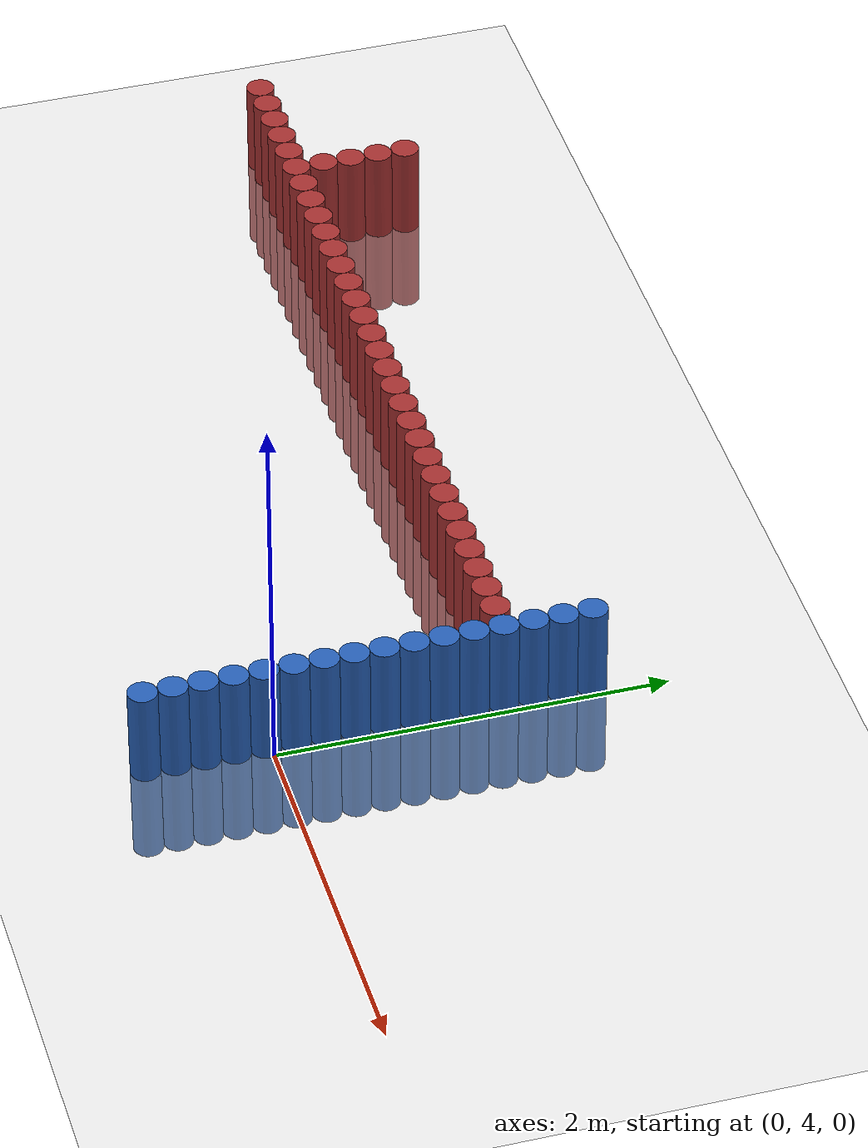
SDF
<sdf version="1.6">
 <world name="default">
  <model name="ground_plane">
   <static>1</static>
   <link name="link">
    <collision name="collision">
     <geometry><plane><normal>0 0 1</normal><size>100 100</size></plane></geometry>
     <surface><friction><ode><mu>100</mu><mu2>50</mu2></ode></friction></surface>
    </collision>
    <visual name="visual">
     <cast_shadows>0</cast_shadows>
     <geometry><plane><normal>0 0 1</normal><size>100 100</size></plane></geometry>
     <material>
      <script><uri>file://media/materials/scripts/gazebo.material</uri><name>Gazebo/Grey</name></script>
     </material>
    </visual>
   </link>
  </model>
  <model name="unit_cylinder_101">
   <static>1</static>
   <pose>-0.075000 3.375000 0.000000 0.000000 0.000000 0.000000</pose>
   <link name="link">
    <inertial>
     <mass>1</mass>
     <inertia><ixx>0.145833</ixx><ixy>0</ixy><ixz>0</ixz><iyy>0.145833</iyy><iyz>0</iyz><izz>0.125</izz></inertia>
    </inertial>
    <collision name="collision">
     <geometry><cylinder><radius>0.075000</radius><length>1</length></cylinder></geometry>
    </collision>
    <visual name="visual">
     <geometry><cylinder><radius>0.075000</radius><length>1</length></cylinder></geometry>
     <material>
      <ambient>0.152000 0.379000 0.720000 1</ambient>
      <diffuse>0.152000 0.379000 0.720000 1</diffuse>
     </material>
     <material>
      <script><name>Gazebo/Grey</name><uri>file://media/materials/scripts/gazebo.material</uri></script>
     </material>
    </visual>
   </link>
  </model>
  <model name="unit_cylinder_103">
   <static>1</static>
   <pose>-0.075000 3.525000 0.000000 0.000000 0.000000 0.000000</pose>
   <link name="link">
    <inertial>
     <mass>1</mass>
     <inertia><ixx>0.145833</ixx><ixy>0</ixy><ixz>0</ixz><iyy>0.145833</iyy><iyz>0</iyz><izz>0.125</izz></inertia>
    </inertial>
    <collision name="collision">
     <geometry><cylinder><radius>0.075000</radius><length>1</length></cylinder></geometry>
    </collision>
    <visual name="visual">
     <geometry><cylinder><radius>0.075000</radius><length>1</length></cylinder></geometry>
     <material>
      <ambient>0.152000 0.379000 0.720000 1</ambient>
      <diffuse>0.152000 0.379000 0.720000 1</diffuse>
     </material>
     <material>
      <script><name>Gazebo/Grey</name><uri>file://media/materials/scripts/gazebo.material</uri></script>
     </material>
    </visual>
   </link>
  </model>
  <model name="unit_cylinder_105">
   <static>1</static>
   <pose>-0.075000 3.675000 0.000000 0.000000 0.000000 0.000000</pose>
   <link name="link">
    <inertial>
     <mass>1</mass>
     <inertia><ixx>0.145833</ixx><ixy>0</ixy><ixz>0</ixz><iyy>0.145833</iyy><iyz>0</iyz><izz>0.125</izz></inertia>
    </inertial>
    <collision name="collision">
     <geometry><cylinder><radius>0.075000</radius><length>1</length></cylinder></geometry>
    </collision>
    <visual name="visual">
     <geometry><cylinder><radius>0.075000</radius><length>1</length></cylinder></geometry>
     <material>
      <ambient>0.152000 0.379000 0.720000 1</ambient>
      <diffuse>0.152000 0.379000 0.720000 1</diffuse>
     </material>
     <material>
      <script><name>Gazebo/Grey</name><uri>file://media/materials/scripts/gazebo.material</uri></script>
     </material>
    </visual>
   </link>
  </model>
  <model name="unit_cylinder_107">
   <static>1</static>
   <pose>-0.075000 3.825000 0.000000 0.000000 0.000000 0.000000</pose>
   <link name="link">
    <inertial>
     <mass>1</mass>
     <inertia><ixx>0.145833</ixx><ixy>0</ixy><ixz>0</ixz><iyy>0.145833</iyy><iyz>0</iyz><izz>0.125</izz></inertia>
    </inertial>
    <collision name="collision">
     <geometry><cylinder><radius>0.075000</radius><length>1</length></cylinder></geometry>
    </collision>
    <visual name="visual">
     <geometry><cylinder><radius>0.075000</radius><length>1</length></cylinder></geometry>
     <material>
      <ambient>0.152000 0.379000 0.720000 1</ambient>
      <diffuse>0.152000 0.379000 0.720000 1</diffuse>
     </material>
     <material>
      <script><name>Gazebo/Grey</name><uri>file://media/materials/scripts/gazebo.material</uri></script>
     </material>
    </visual>
   </link>
  </model>
  <model name="unit_cylinder_109">
   <static>1</static>
   <pose>-0.075000 3.975000 0.000000 0.000000 0.000000 0.000000</pose>
   <link name="link">
    <inertial>
     <mass>1</mass>
     <inertia><ixx>0.145833</ixx><ixy>0</ixy><ixz>0</ixz><iyy>0.145833</iyy><iyz>0</iyz><izz>0.125</izz></inertia>
    </inertial>
    <collision name="collision">
     <geometry><cylinder><radius>0.075000</radius><length>1</length></cylinder></geometry>
    </collision>
    <visual name="visual">
     <geometry><cylinder><radius>0.075000</radius><length>1</length></cylinder></geometry>
     <material>
      <ambient>0.152000 0.379000 0.720000 1</ambient>
      <diffuse>0.152000 0.379000 0.720000 1</diffuse>
     </material>
     <material>
      <script><name>Gazebo/Grey</name><uri>file://media/materials/scripts/gazebo.material</uri></script>
     </material>
    </visual>
   </link>
  </model>
  <model name="unit_cylinder_111">
   <static>1</static>
   <pose>-0.075000 4.125000 0.000000 0.000000 0.000000 0.000000</pose>
   <link name="link">
    <inertial>
     <mass>1</mass>
     <inertia><ixx>0.145833</ixx><ixy>0</ixy><ixz>0</ixz><iyy>0.145833</iyy><iyz>0</iyz><izz>0.125</izz></inertia>
    </inertial>
    <collision name="collision">
     <geometry><cylinder><radius>0.075000</radius><length>1</length></cylinder></geometry>
    </collision>
    <visual name="visual">
     <geometry><cylinder><radius>0.075000</radius><length>1</length></cylinder></geometry>
     <material>
      <ambient>0.152000 0.379000 0.720000 1</ambient>
      <diffuse>0.152000 0.379000 0.720000 1</diffuse>
     </material>
     <material>
      <script><name>Gazebo/Grey</name><uri>file://media/materials/scripts/gazebo.material</uri></script>
     </material>
    </visual>
   </link>
  </model>
  <model name="unit_cylinder_113">
   <static>1</static>
   <pose>-0.075000 4.275000 0.000000 0.000000 0.000000 0.000000</pose>
   <link name="link">
    <inertial>
     <mass>1</mass>
     <inertia><ixx>0.145833</ixx><ixy>0</ixy><ixz>0</ixz><iyy>0.145833</iyy><iyz>0</iyz><izz>0.125</izz></inertia>
    </inertial>
    <collision name="collision">
     <geometry><cylinder><radius>0.075000</radius><length>1</length></cylinder></geometry>
    </collision>
    <visual name="visual">
     <geometry><cylinder><radius>0.075000</radius><length>1</length></cylinder></geometry>
     <material>
      <ambient>0.152000 0.379000 0.720000 1</ambient>
      <diffuse>0.152000 0.379000 0.720000 1</diffuse>
     </material>
     <material>
      <script><name>Gazebo/Grey</name><uri>file://media/materials/scripts/gazebo.material</uri></script>
     </material>
    </visual>
   </link>
  </model>
  <model name="unit_cylinder_115">
   <static>1</static>
   <pose>-0.075000 4.425000 0.000000 0.000000 0.000000 0.000000</pose>
   <link name="link">
    <inertial>
     <mass>1</mass>
     <inertia><ixx>0.145833</ixx><ixy>0</ixy><ixz>0</ixz><iyy>0.145833</iyy><iyz>0</iyz><izz>0.125</izz></inertia>
    </inertial>
    <collision name="collision">
     <geometry><cylinder><radius>0.075000</radius><length>1</length></cylinder></geometry>
    </collision>
    <visual name="visual">
     <geometry><cylinder><radius>0.075000</radius><length>1</length></cylinder></geometry>
     <material>
      <ambient>0.152000 0.379000 0.720000 1</ambient>
      <diffuse>0.152000 0.379000 0.720000 1</diffuse>
     </material>
     <material>
      <script><name>Gazebo/Grey</name><uri>file://media/materials/scripts/gazebo.material</uri></script>
     </material>
    </visual>
   </link>
  </model>
  <model name="unit_cylinder_117">
   <static>1</static>
   <pose>-0.075000 4.575000 0.000000 0.000000 0.000000 0.000000</pose>
   <link name="link">
    <inertial>
     <mass>1</mass>
     <inertia><ixx>0.145833</ixx><ixy>0</ixy><ixz>0</ixz><iyy>0.145833</iyy><iyz>0</iyz><izz>0.125</izz></inertia>
    </inertial>
    <collision name="collision">
     <geometry><cylinder><radius>0.075000</radius><length>1</length></cylinder></geometry>
    </collision>
    <visual name="visual">
     <geometry><cylinder><radius>0.075000</radius><length>1</length></cylinder></geometry>
     <material>
      <ambient>0.152000 0.379000 0.720000 1</ambient>
      <diffuse>0.152000 0.379000 0.720000 1</diffuse>
     </material>
     <material>
      <script><name>Gazebo/Grey</name><uri>file://media/materials/scripts/gazebo.material</uri></script>
     </material>
    </visual>
   </link>
  </model>
  <model name="unit_cylinder_119">
   <static>1</static>
   <pose>-0.075000 4.725000 0.000000 0.000000 0.000000 0.000000</pose>
   <link name="link">
    <inertial>
     <mass>1</mass>
     <inertia><ixx>0.145833</ixx><ixy>0</ixy><ixz>0</ixz><iyy>0.145833</iyy><iyz>0</iyz><izz>0.125</izz></inertia>
    </inertial>
    <collision name="collision">
     <geometry><cylinder><radius>0.075000</radius><length>1</length></cylinder></geometry>
    </collision>
    <visual name="visual">
     <geometry><cylinder><radius>0.075000</radius><length>1</length></cylinder></geometry>
     <material>
      <ambient>0.152000 0.379000 0.720000 1</ambient>
      <diffuse>0.152000 0.379000 0.720000 1</diffuse>
     </material>
     <material>
      <script><name>Gazebo/Grey</name><uri>file://media/materials/scripts/gazebo.material</uri></script>
     </material>
    </visual>
   </link>
  </model>
  <model name="unit_cylinder_121">
   <static>1</static>
   <pose>-0.075000 4.875000 0.000000 0.000000 0.000000 0.000000</pose>
   <link name="link">
    <inertial>
     <mass>1</mass>
     <inertia><ixx>0.145833</ixx><ixy>0</ixy><ixz>0</ixz><iyy>0.145833</iyy><iyz>0</iyz><izz>0.125</izz></inertia>
    </inertial>
    <collision name="collision">
     <geometry><cylinder><radius>0.075000</radius><length>1</length></cylinder></geometry>
    </collision>
    <visual name="visual">
     <geometry><cylinder><radius>0.075000</radius><length>1</length></cylinder></geometry>
     <material>
      <ambient>0.152000 0.379000 0.720000 1</ambient>
      <diffuse>0.152000 0.379000 0.720000 1</diffuse>
     </material>
     <material>
      <script><name>Gazebo/Grey</name><uri>file://media/materials/scripts/gazebo.material</uri></script>
     </material>
    </visual>
   </link>
  </model>
  <model name="unit_cylinder_123">
   <static>1</static>
   <pose>-0.075000 5.025000 0.000000 0.000000 0.000000 0.000000</pose>
   <link name="link">
    <inertial>
     <mass>1</mass>
     <inertia><ixx>0.145833</ixx><ixy>0</ixy><ixz>0</ixz><iyy>0.145833</iyy><iyz>0</iyz><izz>0.125</izz></inertia>
    </inertial>
    <collision name="collision">
     <geometry><cylinder><radius>0.075000</radius><length>1</length></cylinder></geometry>
    </collision>
    <visual name="visual">
     <geometry><cylinder><radius>0.075000</radius><length>1</length></cylinder></geometry>
     <material>
      <ambient>0.152000 0.379000 0.720000 1</ambient>
      <diffuse>0.152000 0.379000 0.720000 1</diffuse>
     </material>
     <material>
      <script><name>Gazebo/Grey</name><uri>file://media/materials/scripts/gazebo.material</uri></script>
     </material>
    </visual>
   </link>
  </model>
  <model name="unit_cylinder_281">
   <static>1</static>
   <pose>-4.725000 5.175000 0.000000 0.000000 0.000000 0.000000</pose>
   <link name="link">
    <inertial>
     <mass>1</mass>
     <inertia><ixx>0.145833</ixx><ixy>0</ixy><ixz>0</ixz><iyy>0.145833</iyy><iyz>0</iyz><izz>0.125</izz></inertia>
    </inertial>
    <collision name="collision">
     <geometry><cylinder><radius>0.075000</radius><length>1</length></cylinder></geometry>
    </collision>
    <visual name="visual">
     <geometry><cylinder><radius>0.075000</radius><length>1</length></cylinder></geometry>
     <material>
      <ambient>0.648000 0.192000 0.192000 1</ambient>
      <diffuse>0.648000 0.192000 0.192000 1</diffuse>
     </material>
     <material>
      <script><name>Gazebo/Grey</name><uri>file://media/materials/scripts/gazebo.material</uri></script>
     </material>
    </visual>
   </link>
  </model>
  <model name="unit_cylinder_282">
   <static>1</static>
   <pose>-4.575000 5.175000 0.000000 0.000000 0.000000 0.000000</pose>
   <link name="link">
    <inertial>
     <mass>1</mass>
     <inertia><ixx>0.145833</ixx><ixy>0</ixy><ixz>0</ixz><iyy>0.145833</iyy><iyz>0</iyz><izz>0.125</izz></inertia>
    </inertial>
    <collision name="collision">
     <geometry><cylinder><radius>0.075000</radius><length>1</length></cylinder></geometry>
    </collision>
    <visual name="visual">
     <geometry><cylinder><radius>0.075000</radius><length>1</length></cylinder></geometry>
     <material>
      <ambient>0.648000 0.192000 0.192000 1</ambient>
      <diffuse>0.648000 0.192000 0.192000 1</diffuse>
     </material>
     <material>
      <script><name>Gazebo/Grey</name><uri>file://media/materials/scripts/gazebo.material</uri></script>
     </material>
    </visual>
   </link>
  </model>
  <model name="unit_cylinder_283">
   <static>1</static>
   <pose>-4.425000 5.175000 0.000000 0.000000 0.000000 0.000000</pose>
   <link name="link">
    <inertial>
     <mass>1</mass>
     <inertia><ixx>0.145833</ixx><ixy>0</ixy><ixz>0</ixz><iyy>0.145833</iyy><iyz>0</iyz><izz>0.125</izz></inertia>
    </inertial>
    <collision name="collision">
     <geometry><cylinder><radius>0.075000</radius><length>1</length></cylinder></geometry>
    </collision>
    <visual name="visual">
     <geometry><cylinder><radius>0.075000</radius><length>1</length></cylinder></geometry>
     <material>
      <ambient>0.648000 0.192000 0.192000 1</ambient>
      <diffuse>0.648000 0.192000 0.192000 1</diffuse>
     </material>
     <material>
      <script><name>Gazebo/Grey</name><uri>file://media/materials/scripts/gazebo.material</uri></script>
     </material>
    </visual>
   </link>
  </model>
  <model name="unit_cylinder_286">
   <static>1</static>
   <pose>-4.275000 5.175000 0.000000 0.000000 0.000000 0.000000</pose>
   <link name="link">
    <inertial>
     <mass>1</mass>
     <inertia><ixx>0.145833</ixx><ixy>0</ixy><ixz>0</ixz><iyy>0.145833</iyy><iyz>0</iyz><izz>0.125</izz></inertia>
    </inertial>
    <collision name="collision">
     <geometry><cylinder><radius>0.075000</radius><length>1</length></cylinder></geometry>
    </collision>
    <visual name="visual">
     <geometry><cylinder><radius>0.075000</radius><length>1</length></cylinder></geometry>
     <material>
      <ambient>0.648000 0.192000 0.192000 1</ambient>
      <diffuse>0.648000 0.192000 0.192000 1</diffuse>
     </material>
     <material>
      <script><name>Gazebo/Grey</name><uri>file://media/materials/scripts/gazebo.material</uri></script>
     </material>
    </visual>
   </link>
  </model>
  <model name="unit_cylinder_291">
   <static>1</static>
   <pose>-4.125000 5.175000 0.000000 0.000000 0.000000 0.000000</pose>
   <link name="link">
    <inertial>
     <mass>1</mass>
     <inertia><ixx>0.145833</ixx><ixy>0</ixy><ixz>0</ixz><iyy>0.145833</iyy><iyz>0</iyz><izz>0.125</izz></inertia>
    </inertial>
    <collision name="collision">
     <geometry><cylinder><radius>0.075000</radius><length>1</length></cylinder></geometry>
    </collision>
    <visual name="visual">
     <geometry><cylinder><radius>0.075000</radius><length>1</length></cylinder></geometry>
     <material>
      <ambient>0.648000 0.192000 0.192000 1</ambient>
      <diffuse>0.648000 0.192000 0.192000 1</diffuse>
     </material>
     <material>
      <script><name>Gazebo/Grey</name><uri>file://media/materials/scripts/gazebo.material</uri></script>
     </material>
    </visual>
   </link>
  </model>
  <model name="unit_cylinder_295">
   <static>1</static>
   <pose>-3.975000 5.175000 0.000000 0.000000 0.000000 0.000000</pose>
   <link name="link">
    <inertial>
     <mass>1</mass>
     <inertia><ixx>0.145833</ixx><ixy>0</ixy><ixz>0</ixz><iyy>0.145833</iyy><iyz>0</iyz><izz>0.125</izz></inertia>
    </inertial>
    <collision name="collision">
     <geometry><cylinder><radius>0.075000</radius><length>1</length></cylinder></geometry>
    </collision>
    <visual name="visual">
     <geometry><cylinder><radius>0.075000</radius><length>1</length></cylinder></geometry>
     <material>
      <ambient>0.648000 0.192000 0.192000 1</ambient>
      <diffuse>0.648000 0.192000 0.192000 1</diffuse>
     </material>
     <material>
      <script><name>Gazebo/Grey</name><uri>file://media/materials/scripts/gazebo.material</uri></script>
     </material>
    </visual>
   </link>
  </model>
  <model name="unit_cylinder_296">
   <static>1</static>
   <pose>-3.975000 5.325000 0.000000 0.000000 0.000000 0.000000</pose>
   <link name="link">
    <inertial>
     <mass>1</mass>
     <inertia><ixx>0.145833</ixx><ixy>0</ixy><ixz>0</ixz><iyy>0.145833</iyy><iyz>0</iyz><izz>0.125</izz></inertia>
    </inertial>
    <collision name="collision">
     <geometry><cylinder><radius>0.075000</radius><length>1</length></cylinder></geometry>
    </collision>
    <visual name="visual">
     <geometry><cylinder><radius>0.075000</radius><length>1</length></cylinder></geometry>
     <material>
      <ambient>0.648000 0.192000 0.192000 1</ambient>
      <diffuse>0.648000 0.192000 0.192000 1</diffuse>
     </material>
     <material>
      <script><name>Gazebo/Grey</name><uri>file://media/materials/scripts/gazebo.material</uri></script>
     </material>
    </visual>
   </link>
  </model>
  <model name="unit_cylinder_297">
   <static>1</static>
   <pose>-3.975000 5.475000 0.000000 0.000000 0.000000 0.000000</pose>
   <link name="link">
    <inertial>
     <mass>1</mass>
     <inertia><ixx>0.145833</ixx><ixy>0</ixy><ixz>0</ixz><iyy>0.145833</iyy><iyz>0</iyz><izz>0.125</izz></inertia>
    </inertial>
    <collision name="collision">
     <geometry><cylinder><radius>0.075000</radius><length>1</length></cylinder></geometry>
    </collision>
    <visual name="visual">
     <geometry><cylinder><radius>0.075000</radius><length>1</length></cylinder></geometry>
     <material>
      <ambient>0.648000 0.192000 0.192000 1</ambient>
      <diffuse>0.648000 0.192000 0.192000 1</diffuse>
     </material>
     <material>
      <script><name>Gazebo/Grey</name><uri>file://media/materials/scripts/gazebo.material</uri></script>
     </material>
    </visual>
   </link>
  </model>
  <model name="unit_cylinder_298">
   <static>1</static>
   <pose>-3.975000 5.625000 0.000000 0.000000 0.000000 0.000000</pose>
   <link name="link">
    <inertial>
     <mass>1</mass>
     <inertia><ixx>0.145833</ixx><ixy>0</ixy><ixz>0</ixz><iyy>0.145833</iyy><iyz>0</iyz><izz>0.125</izz></inertia>
    </inertial>
    <collision name="collision">
     <geometry><cylinder><radius>0.075000</radius><length>1</length></cylinder></geometry>
    </collision>
    <visual name="visual">
     <geometry><cylinder><radius>0.075000</radius><length>1</length></cylinder></geometry>
     <material>
      <ambient>0.648000 0.192000 0.192000 1</ambient>
      <diffuse>0.648000 0.192000 0.192000 1</diffuse>
     </material>
     <material>
      <script><name>Gazebo/Grey</name><uri>file://media/materials/scripts/gazebo.material</uri></script>
     </material>
    </visual>
   </link>
  </model>
  <model name="unit_cylinder_299">
   <static>1</static>
   <pose>-3.975000 5.775000 0.000000 0.000000 0.000000 0.000000</pose>
   <link name="link">
    <inertial>
     <mass>1</mass>
     <inertia><ixx>0.145833</ixx><ixy>0</ixy><ixz>0</ixz><iyy>0.145833</iyy><iyz>0</iyz><izz>0.125</izz></inertia>
    </inertial>
    <collision name="collision">
     <geometry><cylinder><radius>0.075000</radius><length>1</length></cylinder></geometry>
    </collision>
    <visual name="visual">
     <geometry><cylinder><radius>0.075000</radius><length>1</length></cylinder></geometry>
     <material>
      <ambient>0.648000 0.192000 0.192000 1</ambient>
      <diffuse>0.648000 0.192000 0.192000 1</diffuse>
     </material>
     <material>
      <script><name>Gazebo/Grey</name><uri>file://media/materials/scripts/gazebo.material</uri></script>
     </material>
    </visual>
   </link>
  </model>
  <model name="unit_cylinder_303">
   <static>1</static>
   <pose>-3.825000 5.175000 0.000000 0.000000 0.000000 0.000000</pose>
   <link name="link">
    <inertial>
     <mass>1</mass>
     <inertia><ixx>0.145833</ixx><ixy>0</ixy><ixz>0</ixz><iyy>0.145833</iyy><iyz>0</iyz><izz>0.125</izz></inertia>
    </inertial>
    <collision name="collision">
     <geometry><cylinder><radius>0.075000</radius><length>1</length></cylinder></geometry>
    </collision>
    <visual name="visual">
     <geometry><cylinder><radius>0.075000</radius><length>1</length></cylinder></geometry>
     <material>
      <ambient>0.648000 0.192000 0.192000 1</ambient>
      <diffuse>0.648000 0.192000 0.192000 1</diffuse>
     </material>
     <material>
      <script><name>Gazebo/Grey</name><uri>file://media/materials/scripts/gazebo.material</uri></script>
     </material>
    </visual>
   </link>
  </model>
  <model name="unit_cylinder_309">
   <static>1</static>
   <pose>-3.675000 5.175000 0.000000 0.000000 0.000000 0.000000</pose>
   <link name="link">
    <inertial>
     <mass>1</mass>
     <inertia><ixx>0.145833</ixx><ixy>0</ixy><ixz>0</ixz><iyy>0.145833</iyy><iyz>0</iyz><izz>0.125</izz></inertia>
    </inertial>
    <collision name="collision">
     <geometry><cylinder><radius>0.075000</radius><length>1</length></cylinder></geometry>
    </collision>
    <visual name="visual">
     <geometry><cylinder><radius>0.075000</radius><length>1</length></cylinder></geometry>
     <material>
      <ambient>0.648000 0.192000 0.192000 1</ambient>
      <diffuse>0.648000 0.192000 0.192000 1</diffuse>
     </material>
     <material>
      <script><name>Gazebo/Grey</name><uri>file://media/materials/scripts/gazebo.material</uri></script>
     </material>
    </visual>
   </link>
  </model>
  <model name="unit_cylinder_312">
   <static>1</static>
   <pose>-3.525000 5.175000 0.000000 0.000000 0.000000 0.000000</pose>
   <link name="link">
    <inertial>
     <mass>1</mass>
     <inertia><ixx>0.145833</ixx><ixy>0</ixy><ixz>0</ixz><iyy>0.145833</iyy><iyz>0</iyz><izz>0.125</izz></inertia>
    </inertial>
    <collision name="collision">
     <geometry><cylinder><radius>0.075000</radius><length>1</length></cylinder></geometry>
    </collision>
    <visual name="visual">
     <geometry><cylinder><radius>0.075000</radius><length>1</length></cylinder></geometry>
     <material>
      <ambient>0.648000 0.192000 0.192000 1</ambient>
      <diffuse>0.648000 0.192000 0.192000 1</diffuse>
     </material>
     <material>
      <script><name>Gazebo/Grey</name><uri>file://media/materials/scripts/gazebo.material</uri></script>
     </material>
    </visual>
   </link>
  </model>
  <model name="unit_cylinder_318">
   <static>1</static>
   <pose>-3.375000 5.175000 0.000000 0.000000 0.000000 0.000000</pose>
   <link name="link">
    <inertial>
     <mass>1</mass>
     <inertia><ixx>0.145833</ixx><ixy>0</ixy><ixz>0</ixz><iyy>0.145833</iyy><iyz>0</iyz><izz>0.125</izz></inertia>
    </inertial>
    <collision name="collision">
     <geometry><cylinder><radius>0.075000</radius><length>1</length></cylinder></geometry>
    </collision>
    <visual name="visual">
     <geometry><cylinder><radius>0.075000</radius><length>1</length></cylinder></geometry>
     <material>
      <ambient>0.648000 0.192000 0.192000 1</ambient>
      <diffuse>0.648000 0.192000 0.192000 1</diffuse>
     </material>
     <material>
      <script><name>Gazebo/Grey</name><uri>file://media/materials/scripts/gazebo.material</uri></script>
     </material>
    </visual>
   </link>
  </model>
  <model name="unit_cylinder_320">
   <static>1</static>
   <pose>-3.225000 5.175000 0.000000 0.000000 0.000000 0.000000</pose>
   <link name="link">
    <inertial>
     <mass>1</mass>
     <inertia><ixx>0.145833</ixx><ixy>0</ixy><ixz>0</ixz><iyy>0.145833</iyy><iyz>0</iyz><izz>0.125</izz></inertia>
    </inertial>
    <collision name="collision">
     <geometry><cylinder><radius>0.075000</radius><length>1</length></cylinder></geometry>
    </collision>
    <visual name="visual">
     <geometry><cylinder><radius>0.075000</radius><length>1</length></cylinder></geometry>
     <material>
      <ambient>0.648000 0.192000 0.192000 1</ambient>
      <diffuse>0.648000 0.192000 0.192000 1</diffuse>
     </material>
     <material>
      <script><name>Gazebo/Grey</name><uri>file://media/materials/scripts/gazebo.material</uri></script>
     </material>
    </visual>
   </link>
  </model>
  <model name="unit_cylinder_322">
   <static>1</static>
   <pose>-3.075000 5.175000 0.000000 0.000000 0.000000 0.000000</pose>
   <link name="link">
    <inertial>
     <mass>1</mass>
     <inertia><ixx>0.145833</ixx><ixy>0</ixy><ixz>0</ixz><iyy>0.145833</iyy><iyz>0</iyz><izz>0.125</izz></inertia>
    </inertial>
    <collision name="collision">
     <geometry><cylinder><radius>0.075000</radius><length>1</length></cylinder></geometry>
    </collision>
    <visual name="visual">
     <geometry><cylinder><radius>0.075000</radius><length>1</length></cylinder></geometry>
     <material>
      <ambient>0.648000 0.192000 0.192000 1</ambient>
      <diffuse>0.648000 0.192000 0.192000 1</diffuse>
     </material>
     <material>
      <script><name>Gazebo/Grey</name><uri>file://media/materials/scripts/gazebo.material</uri></script>
     </material>
    </visual>
   </link>
  </model>
  <model name="unit_cylinder_324">
   <static>1</static>
   <pose>-2.925000 5.175000 0.000000 0.000000 0.000000 0.000000</pose>
   <link name="link">
    <inertial>
     <mass>1</mass>
     <inertia><ixx>0.145833</ixx><ixy>0</ixy><ixz>0</ixz><iyy>0.145833</iyy><iyz>0</iyz><izz>0.125</izz></inertia>
    </inertial>
    <collision name="collision">
     <geometry><cylinder><radius>0.075000</radius><length>1</length></cylinder></geometry>
    </collision>
    <visual name="visual">
     <geometry><cylinder><radius>0.075000</radius><length>1</length></cylinder></geometry>
     <material>
      <ambient>0.648000 0.192000 0.192000 1</ambient>
      <diffuse>0.648000 0.192000 0.192000 1</diffuse>
     </material>
     <material>
      <script><name>Gazebo/Grey</name><uri>file://media/materials/scripts/gazebo.material</uri></script>
     </material>
    </visual>
   </link>
  </model>
  <model name="unit_cylinder_328">
   <static>1</static>
   <pose>-2.775000 5.175000 0.000000 0.000000 0.000000 0.000000</pose>
   <link name="link">
    <inertial>
     <mass>1</mass>
     <inertia><ixx>0.145833</ixx><ixy>0</ixy><ixz>0</ixz><iyy>0.145833</iyy><iyz>0</iyz><izz>0.125</izz></inertia>
    </inertial>
    <collision name="collision">
     <geometry><cylinder><radius>0.075000</radius><length>1</length></cylinder></geometry>
    </collision>
    <visual name="visual">
     <geometry><cylinder><radius>0.075000</radius><length>1</length></cylinder></geometry>
     <material>
      <ambient>0.648000 0.192000 0.192000 1</ambient>
      <diffuse>0.648000 0.192000 0.192000 1</diffuse>
     </material>
     <material>
      <script><name>Gazebo/Grey</name><uri>file://media/materials/scripts/gazebo.material</uri></script>
     </material>
    </visual>
   </link>
  </model>
  <model name="unit_cylinder_330">
   <static>1</static>
   <pose>-2.625000 5.175000 0.000000 0.000000 0.000000 0.000000</pose>
   <link name="link">
    <inertial>
     <mass>1</mass>
     <inertia><ixx>0.145833</ixx><ixy>0</ixy><ixz>0</ixz><iyy>0.145833</iyy><iyz>0</iyz><izz>0.125</izz></inertia>
    </inertial>
    <collision name="collision">
     <geometry><cylinder><radius>0.075000</radius><length>1</length></cylinder></geometry>
    </collision>
    <visual name="visual">
     <geometry><cylinder><radius>0.075000</radius><length>1</length></cylinder></geometry>
     <material>
      <ambient>0.648000 0.192000 0.192000 1</ambient>
      <diffuse>0.648000 0.192000 0.192000 1</diffuse>
     </material>
     <material>
      <script><name>Gazebo/Grey</name><uri>file://media/materials/scripts/gazebo.material</uri></script>
     </material>
    </visual>
   </link>
  </model>
  <model name="unit_cylinder_333">
   <static>1</static>
   <pose>-2.475000 5.175000 0.000000 0.000000 0.000000 0.000000</pose>
   <link name="link">
    <inertial>
     <mass>1</mass>
     <inertia><ixx>0.145833</ixx><ixy>0</ixy><ixz>0</ixz><iyy>0.145833</iyy><iyz>0</iyz><izz>0.125</izz></inertia>
    </inertial>
    <collision name="collision">
     <geometry><cylinder><radius>0.075000</radius><length>1</length></cylinder></geometry>
    </collision>
    <visual name="visual">
     <geometry><cylinder><radius>0.075000</radius><length>1</length></cylinder></geometry>
     <material>
      <ambient>0.648000 0.192000 0.192000 1</ambient>
      <diffuse>0.648000 0.192000 0.192000 1</diffuse>
     </material>
     <material>
      <script><name>Gazebo/Grey</name><uri>file://media/materials/scripts/gazebo.material</uri></script>
     </material>
    </visual>
   </link>
  </model>
  <model name="unit_cylinder_350">
   <static>1</static>
   <pose>-2.325000 5.175000 0.000000 0.000000 0.000000 0.000000</pose>
   <link name="link">
    <inertial>
     <mass>1</mass>
     <inertia><ixx>0.145833</ixx><ixy>0</ixy><ixz>0</ixz><iyy>0.145833</iyy><iyz>0</iyz><izz>0.125</izz></inertia>
    </inertial>
    <collision name="collision">
     <geometry><cylinder><radius>0.075000</radius><length>1</length></cylinder></geometry>
    </collision>
    <visual name="visual">
     <geometry><cylinder><radius>0.075000</radius><length>1</length></cylinder></geometry>
     <material>
      <ambient>0.648000 0.192000 0.192000 1</ambient>
      <diffuse>0.648000 0.192000 0.192000 1</diffuse>
     </material>
     <material>
      <script><name>Gazebo/Grey</name><uri>file://media/materials/scripts/gazebo.material</uri></script>
     </material>
    </visual>
   </link>
  </model>
  <model name="unit_cylinder_352">
   <static>1</static>
   <pose>-2.175000 5.175000 0.000000 0.000000 0.000000 0.000000</pose>
   <link name="link">
    <inertial>
     <mass>1</mass>
     <inertia><ixx>0.145833</ixx><ixy>0</ixy><ixz>0</ixz><iyy>0.145833</iyy><iyz>0</iyz><izz>0.125</izz></inertia>
    </inertial>
    <collision name="collision">
     <geometry><cylinder><radius>0.075000</radius><length>1</length></cylinder></geometry>
    </collision>
    <visual name="visual">
     <geometry><cylinder><radius>0.075000</radius><length>1</length></cylinder></geometry>
     <material>
      <ambient>0.648000 0.192000 0.192000 1</ambient>
      <diffuse>0.648000 0.192000 0.192000 1</diffuse>
     </material>
     <material>
      <script><name>Gazebo/Grey</name><uri>file://media/materials/scripts/gazebo.material</uri></script>
     </material>
    </visual>
   </link>
  </model>
  <model name="unit_cylinder_354">
   <static>1</static>
   <pose>-2.025000 5.175000 0.000000 0.000000 0.000000 0.000000</pose>
   <link name="link">
    <inertial>
     <mass>1</mass>
     <inertia><ixx>0.145833</ixx><ixy>0</ixy><ixz>0</ixz><iyy>0.145833</iyy><iyz>0</iyz><izz>0.125</izz></inertia>
    </inertial>
    <collision name="collision">
     <geometry><cylinder><radius>0.075000</radius><length>1</length></cylinder></geometry>
    </collision>
    <visual name="visual">
     <geometry><cylinder><radius>0.075000</radius><length>1</length></cylinder></geometry>
     <material>
      <ambient>0.648000 0.192000 0.192000 1</ambient>
      <diffuse>0.648000 0.192000 0.192000 1</diffuse>
     </material>
     <material>
      <script><name>Gazebo/Grey</name><uri>file://media/materials/scripts/gazebo.material</uri></script>
     </material>
    </visual>
   </link>
  </model>
  <model name="unit_cylinder_356">
   <static>1</static>
   <pose>-1.875000 5.175000 0.000000 0.000000 0.000000 0.000000</pose>
   <link name="link">
    <inertial>
     <mass>1</mass>
     <inertia><ixx>0.145833</ixx><ixy>0</ixy><ixz>0</ixz><iyy>0.145833</iyy><iyz>0</iyz><izz>0.125</izz></inertia>
    </inertial>
    <collision name="collision">
     <geometry><cylinder><radius>0.075000</radius><length>1</length></cylinder></geometry>
    </collision>
    <visual name="visual">
     <geometry><cylinder><radius>0.075000</radius><length>1</length></cylinder></geometry>
     <material>
      <ambient>0.648000 0.192000 0.192000 1</ambient>
      <diffuse>0.648000 0.192000 0.192000 1</diffuse>
     </material>
     <material>
      <script><name>Gazebo/Grey</name><uri>file://media/materials/scripts/gazebo.material</uri></script>
     </material>
    </visual>
   </link>
  </model>
  <model name="unit_cylinder_358">
   <static>1</static>
   <pose>-1.725000 5.175000 0.000000 0.000000 0.000000 0.000000</pose>
   <link name="link">
    <inertial>
     <mass>1</mass>
     <inertia><ixx>0.145833</ixx><ixy>0</ixy><ixz>0</ixz><iyy>0.145833</iyy><iyz>0</iyz><izz>0.125</izz></inertia>
    </inertial>
    <collision name="collision">
     <geometry><cylinder><radius>0.075000</radius><length>1</length></cylinder></geometry>
    </collision>
    <visual name="visual">
     <geometry><cylinder><radius>0.075000</radius><length>1</length></cylinder></geometry>
     <material>
      <ambient>0.648000 0.192000 0.192000 1</ambient>
      <diffuse>0.648000 0.192000 0.192000 1</diffuse>
     </material>
     <material>
      <script><name>Gazebo/Grey</name><uri>file://media/materials/scripts/gazebo.material</uri></script>
     </material>
    </visual>
   </link>
  </model>
  <model name="unit_cylinder_360">
   <static>1</static>
   <pose>-1.575000 5.175000 0.000000 0.000000 0.000000 0.000000</pose>
   <link name="link">
    <inertial>
     <mass>1</mass>
     <inertia><ixx>0.145833</ixx><ixy>0</ixy><ixz>0</ixz><iyy>0.145833</iyy><iyz>0</iyz><izz>0.125</izz></inertia>
    </inertial>
    <collision name="collision">
     <geometry><cylinder><radius>0.075000</radius><length>1</length></cylinder></geometry>
    </collision>
    <visual name="visual">
     <geometry><cylinder><radius>0.075000</radius><length>1</length></cylinder></geometry>
     <material>
      <ambient>0.648000 0.192000 0.192000 1</ambient>
      <diffuse>0.648000 0.192000 0.192000 1</diffuse>
     </material>
     <material>
      <script><name>Gazebo/Grey</name><uri>file://media/materials/scripts/gazebo.material</uri></script>
     </material>
    </visual>
   </link>
  </model>
  <model name="unit_cylinder_362">
   <static>1</static>
   <pose>-1.425000 5.175000 0.000000 0.000000 0.000000 0.000000</pose>
   <link name="link">
    <inertial>
     <mass>1</mass>
     <inertia><ixx>0.145833</ixx><ixy>0</ixy><ixz>0</ixz><iyy>0.145833</iyy><iyz>0</iyz><izz>0.125</izz></inertia>
    </inertial>
    <collision name="collision">
     <geometry><cylinder><radius>0.075000</radius><length>1</length></cylinder></geometry>
    </collision>
    <visual name="visual">
     <geometry><cylinder><radius>0.075000</radius><length>1</length></cylinder></geometry>
     <material>
      <ambient>0.648000 0.192000 0.192000 1</ambient>
      <diffuse>0.648000 0.192000 0.192000 1</diffuse>
     </material>
     <material>
      <script><name>Gazebo/Grey</name><uri>file://media/materials/scripts/gazebo.material</uri></script>
     </material>
    </visual>
   </link>
  </model>
  <model name="unit_cylinder_364">
   <static>1</static>
   <pose>-1.275000 5.175000 0.000000 0.000000 0.000000 0.000000</pose>
   <link name="link">
    <inertial>
     <mass>1</mass>
     <inertia><ixx>0.145833</ixx><ixy>0</ixy><ixz>0</ixz><iyy>0.145833</iyy><iyz>0</iyz><izz>0.125</izz></inertia>
    </inertial>
    <collision name="collision">
     <geometry><cylinder><radius>0.075000</radius><length>1</length></cylinder></geometry>
    </collision>
    <visual name="visual">
     <geometry><cylinder><radius>0.075000</radius><length>1</length></cylinder></geometry>
     <material>
      <ambient>0.648000 0.192000 0.192000 1</ambient>
      <diffuse>0.648000 0.192000 0.192000 1</diffuse>
     </material>
     <material>
      <script><name>Gazebo/Grey</name><uri>file://media/materials/scripts/gazebo.material</uri></script>
     </material>
    </visual>
   </link>
  </model>
  <model name="unit_cylinder_366">
   <static>1</static>
   <pose>-1.125000 5.175000 0.000000 0.000000 0.000000 0.000000</pose>
   <link name="link">
    <inertial>
     <mass>1</mass>
     <inertia><ixx>0.145833</ixx><ixy>0</ixy><ixz>0</ixz><iyy>0.145833</iyy><iyz>0</iyz><izz>0.125</izz></inertia>
    </inertial>
    <collision name="collision">
     <geometry><cylinder><radius>0.075000</radius><length>1</length></cylinder></geometry>
    </collision>
    <visual name="visual">
     <geometry><cylinder><radius>0.075000</radius><length>1</length></cylinder></geometry>
     <material>
      <ambient>0.648000 0.192000 0.192000 1</ambient>
      <diffuse>0.648000 0.192000 0.192000 1</diffuse>
     </material>
     <material>
      <script><name>Gazebo/Grey</name><uri>file://media/materials/scripts/gazebo.material</uri></script>
     </material>
    </visual>
   </link>
  </model>
  <model name="unit_cylinder_368">
   <static>1</static>
   <pose>-0.975000 5.175000 0.000000 0.000000 0.000000 0.000000</pose>
   <link name="link">
    <inertial>
     <mass>1</mass>
     <inertia><ixx>0.145833</ixx><ixy>0</ixy><ixz>0</ixz><iyy>0.145833</iyy><iyz>0</iyz><izz>0.125</izz></inertia>
    </inertial>
    <collision name="collision">
     <geometry><cylinder><radius>0.075000</radius><length>1</length></cylinder></geometry>
    </collision>
    <visual name="visual">
     <geometry><cylinder><radius>0.075000</radius><length>1</length></cylinder></geometry>
     <material>
      <ambient>0.648000 0.192000 0.192000 1</ambient>
      <diffuse>0.648000 0.192000 0.192000 1</diffuse>
     </material>
     <material>
      <script><name>Gazebo/Grey</name><uri>file://media/materials/scripts/gazebo.material</uri></script>
     </material>
    </visual>
   </link>
  </model>
  <model name="unit_cylinder_370">
   <static>1</static>
   <pose>-0.825000 5.175000 0.000000 0.000000 0.000000 0.000000</pose>
   <link name="link">
    <inertial>
     <mass>1</mass>
     <inertia><ixx>0.145833</ixx><ixy>0</ixy><ixz>0</ixz><iyy>0.145833</iyy><iyz>0</iyz><izz>0.125</izz></inertia>
    </inertial>
    <collision name="collision">
     <geometry><cylinder><radius>0.075000</radius><length>1</length></cylinder></geometry>
    </collision>
    <visual name="visual">
     <geometry><cylinder><radius>0.075000</radius><length>1</length></cylinder></geometry>
     <material>
      <ambient>0.648000 0.192000 0.192000 1</ambient>
      <diffuse>0.648000 0.192000 0.192000 1</diffuse>
     </material>
     <material>
      <script><name>Gazebo/Grey</name><uri>file://media/materials/scripts/gazebo.material</uri></script>
     </material>
    </visual>
   </link>
  </model>
  <model name="unit_cylinder_372">
   <static>1</static>
   <pose>-0.675000 5.175000 0.000000 0.000000 0.000000 0.000000</pose>
   <link name="link">
    <inertial>
     <mass>1</mass>
     <inertia><ixx>0.145833</ixx><ixy>0</ixy><ixz>0</ixz><iyy>0.145833</iyy><iyz>0</iyz><izz>0.125</izz></inertia>
    </inertial>
    <collision name="collision">
     <geometry><cylinder><radius>0.075000</radius><length>1</length></cylinder></geometry>
    </collision>
    <visual name="visual">
     <geometry><cylinder><radius>0.075000</radius><length>1</length></cylinder></geometry>
     <material>
      <ambient>0.648000 0.192000 0.192000 1</ambient>
      <diffuse>0.648000 0.192000 0.192000 1</diffuse>
     </material>
     <material>
      <script><name>Gazebo/Grey</name><uri>file://media/materials/scripts/gazebo.material</uri></script>
     </material>
    </visual>
   </link>
  </model>
  <model name="unit_cylinder_374">
   <static>1</static>
   <pose>-0.525000 5.175000 0.000000 0.000000 0.000000 0.000000</pose>
   <link name="link">
    <inertial>
     <mass>1</mass>
     <inertia><ixx>0.145833</ixx><ixy>0</ixy><ixz>0</ixz><iyy>0.145833</iyy><iyz>0</iyz><izz>0.125</izz></inertia>
    </inertial>
    <collision name="collision">
     <geometry><cylinder><radius>0.075000</radius><length>1</length></cylinder></geometry>
    </collision>
    <visual name="visual">
     <geometry><cylinder><radius>0.075000</radius><length>1</length></cylinder></geometry>
     <material>
      <ambient>0.648000 0.192000 0.192000 1</ambient>
      <diffuse>0.648000 0.192000 0.192000 1</diffuse>
     </material>
     <material>
      <script><name>Gazebo/Grey</name><uri>file://media/materials/scripts/gazebo.material</uri></script>
     </material>
    </visual>
   </link>
  </model>
  <model name="unit_cylinder_376">
   <static>1</static>
   <pose>-0.375000 5.175000 0.000000 0.000000 0.000000 0.000000</pose>
   <link name="link">
    <inertial>
     <mass>1</mass>
     <inertia><ixx>0.145833</ixx><ixy>0</ixy><ixz>0</ixz><iyy>0.145833</iyy><iyz>0</iyz><izz>0.125</izz></inertia>
    </inertial>
    <collision name="collision">
     <geometry><cylinder><radius>0.075000</radius><length>1</length></cylinder></geometry>
    </collision>
    <visual name="visual">
     <geometry><cylinder><radius>0.075000</radius><length>1</length></cylinder></geometry>
     <material>
      <ambient>0.648000 0.192000 0.192000 1</ambient>
      <diffuse>0.648000 0.192000 0.192000 1</diffuse>
     </material>
     <material>
      <script><name>Gazebo/Grey</name><uri>file://media/materials/scripts/gazebo.material</uri></script>
     </material>
    </visual>
   </link>
  </model>
  <model name="unit_cylinder_378">
   <static>1</static>
   <pose>-0.225000 5.175000 0.000000 0.000000 0.000000 0.000000</pose>
   <link name="link">
    <inertial>
     <mass>1</mass>
     <inertia><ixx>0.145833</ixx><ixy>0</ixy><ixz>0</ixz><iyy>0.145833</iyy><iyz>0</iyz><izz>0.125</izz></inertia>
    </inertial>
    <collision name="collision">
     <geometry><cylinder><radius>0.075000</radius><length>1</length></cylinder></geometry>
    </collision>
    <visual name="visual">
     <geometry><cylinder><radius>0.075000</radius><length>1</length></cylinder></geometry>
     <material>
      <ambient>0.648000 0.192000 0.192000 1</ambient>
      <diffuse>0.648000 0.192000 0.192000 1</diffuse>
     </material>
     <material>
      <script><name>Gazebo/Grey</name><uri>file://media/materials/scripts/gazebo.material</uri></script>
     </material>
    </visual>
   </link>
  </model>
  <model name="unit_cylinder_380">
   <static>1</static>
   <pose>-0.075000 5.175000 0.000000 0.000000 0.000000 0.000000</pose>
   <link name="link">
    <inertial>
     <mass>1</mass>
     <inertia><ixx>0.145833</ixx><ixy>0</ixy><ixz>0</ixz><iyy>0.145833</iyy><iyz>0</iyz><izz>0.125</izz></inertia>
    </inertial>
    <collision name="collision">
     <geometry><cylinder><radius>0.075000</radius><length>1</length></cylinder></geometry>
    </collision>
    <visual name="visual">
     <geometry><cylinder><radius>0.075000</radius><length>1</length></cylinder></geometry>
     <material>
      <ambient>0.152000 0.379000 0.720000 1</ambient>
      <diffuse>0.152000 0.379000 0.720000 1</diffuse>
     </material>
     <material>
      <script><name>Gazebo/Grey</name><uri>file://media/materials/scripts/gazebo.material</uri></script>
     </material>
    </visual>
   </link>
  </model>
  <model name="unit_cylinder_381">
   <static>1</static>
   <pose>-0.075000 5.325000 0.000000 0.000000 0.000000 0.000000</pose>
   <link name="link">
    <inertial>
     <mass>1</mass>
     <inertia><ixx>0.145833</ixx><ixy>0</ixy><ixz>0</ixz><iyy>0.145833</iyy><iyz>0</iyz><izz>0.125</izz></inertia>
    </inertial>
    <collision name="collision">
     <geometry><cylinder><radius>0.075000</radius><length>1</length></cylinder></geometry>
    </collision>
    <visual name="visual">
     <geometry><cylinder><radius>0.075000</radius><length>1</length></cylinder></geometry>
     <material>
      <ambient>0.152000 0.379000 0.720000 1</ambient>
      <diffuse>0.152000 0.379000 0.720000 1</diffuse>
     </material>
     <material>
      <script><name>Gazebo/Grey</name><uri>file://media/materials/scripts/gazebo.material</uri></script>
     </material>
    </visual>
   </link>
  </model>
  <model name="unit_cylinder_382">
   <static>1</static>
   <pose>-0.075000 5.475000 0.000000 0.000000 0.000000 0.000000</pose>
   <link name="link">
    <inertial>
     <mass>1</mass>
     <inertia><ixx>0.145833</ixx><ixy>0</ixy><ixz>0</ixz><iyy>0.145833</iyy><iyz>0</iyz><izz>0.125</izz></inertia>
    </inertial>
    <collision name="collision">
     <geometry><cylinder><radius>0.075000</radius><length>1</length></cylinder></geometry>
    </collision>
    <visual name="visual">
     <geometry><cylinder><radius>0.075000</radius><length>1</length></cylinder></geometry>
     <material>
      <ambient>0.152000 0.379000 0.720000 1</ambient>
      <diffuse>0.152000 0.379000 0.720000 1</diffuse>
     </material>
     <material>
      <script><name>Gazebo/Grey</name><uri>file://media/materials/scripts/gazebo.material</uri></script>
     </material>
    </visual>
   </link>
  </model>
  <model name="unit_cylinder_383">
   <static>1</static>
   <pose>-0.075000 5.625000 0.000000 0.000000 0.000000 0.000000</pose>
   <link name="link">
    <inertial>
     <mass>1</mass>
     <inertia><ixx>0.145833</ixx><ixy>0</ixy><ixz>0</ixz><iyy>0.145833</iyy><iyz>0</iyz><izz>0.125</izz></inertia>
    </inertial>
    <collision name="collision">
     <geometry><cylinder><radius>0.075000</radius><length>1</length></cylinder></geometry>
    </collision>
    <visual name="visual">
     <geometry><cylinder><radius>0.075000</radius><length>1</length></cylinder></geometry>
     <material>
      <ambient>0.152000 0.379000 0.720000 1</ambient>
      <diffuse>0.152000 0.379000 0.720000 1</diffuse>
     </material>
     <material>
      <script><name>Gazebo/Grey</name><uri>file://media/materials/scripts/gazebo.material</uri></script>
     </material>
    </visual>
   </link>
  </model>
 </world>
</sdf>
